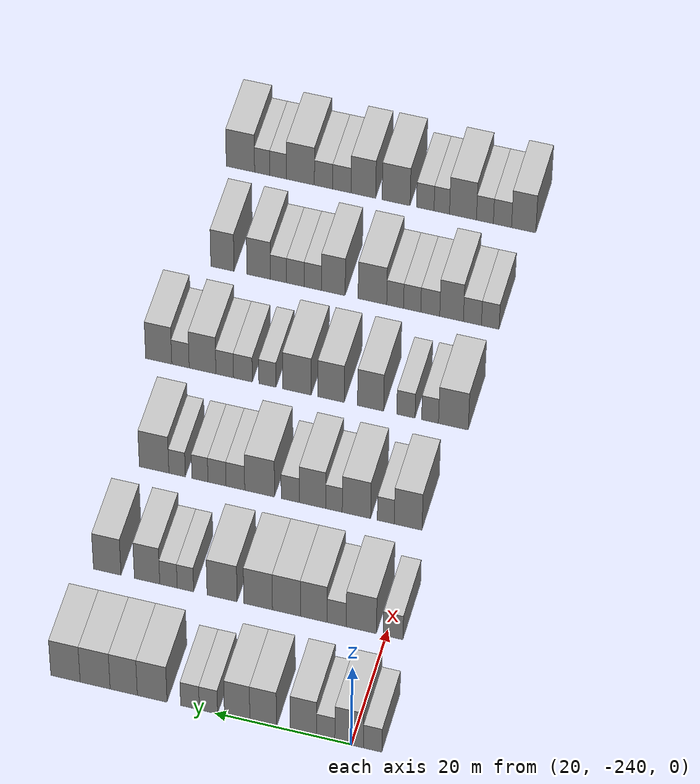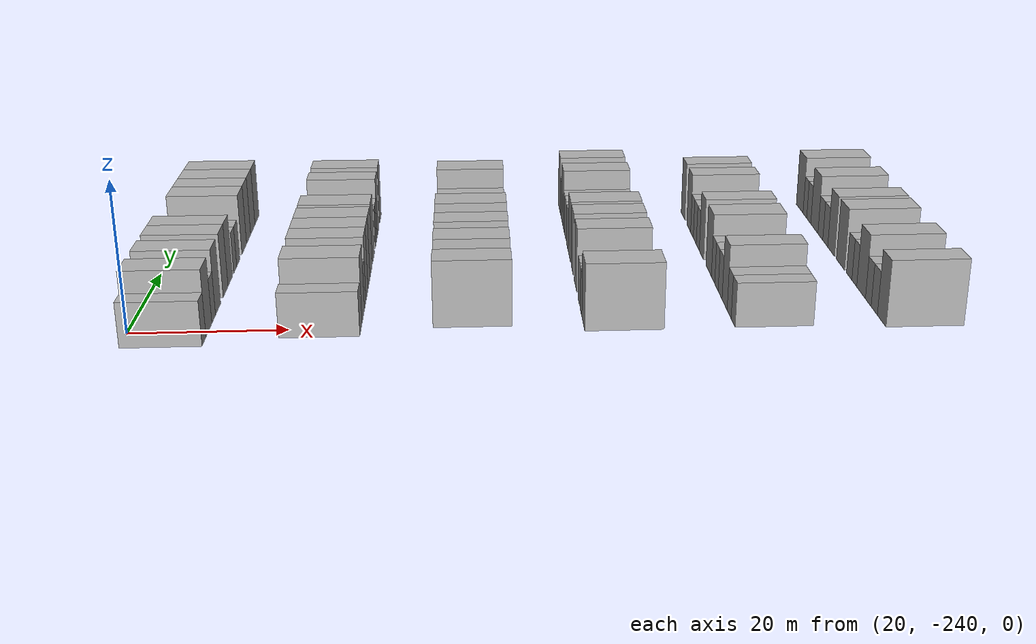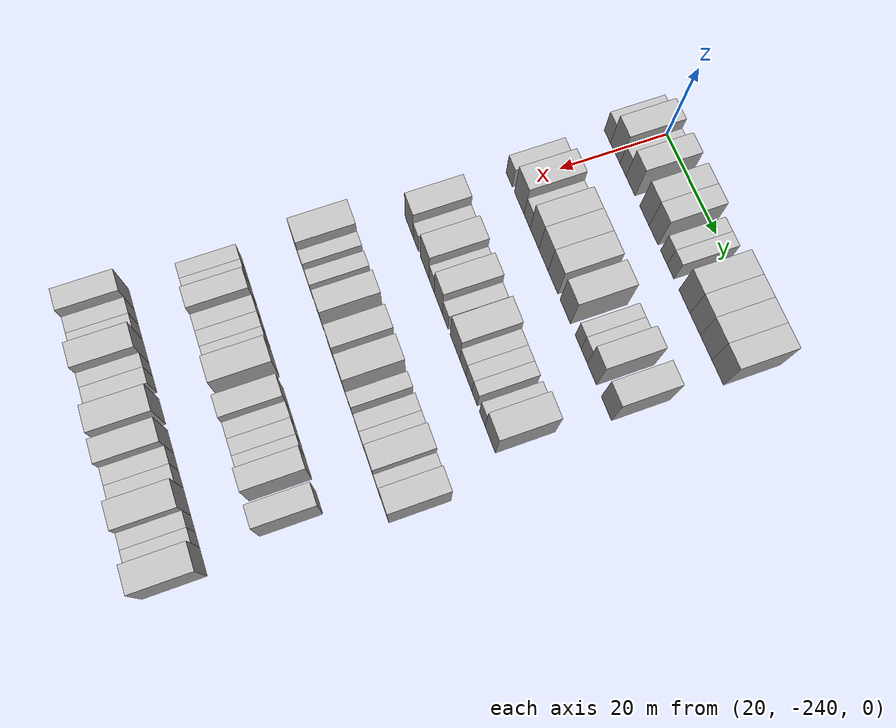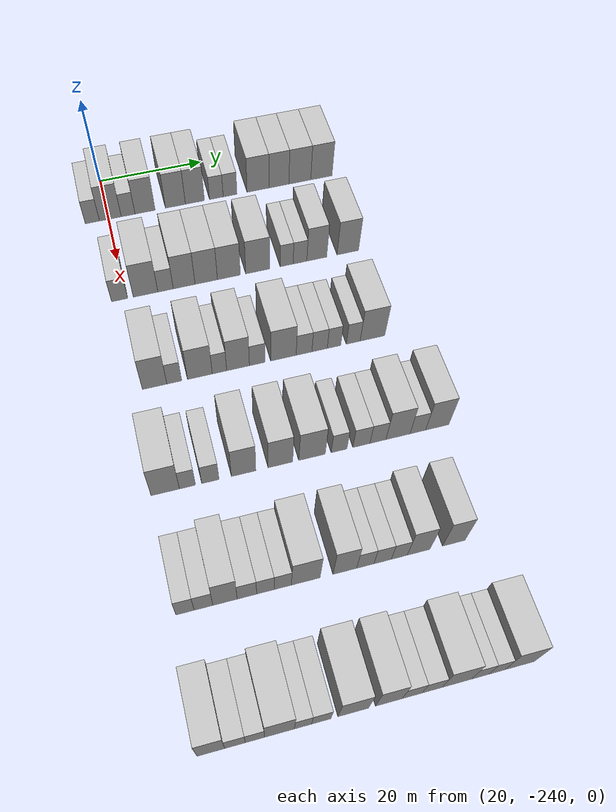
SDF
<sdf version="1.6">
 <world name="default">
  <model name="building_21">
   <static>1</static>
   <pose>25.0000 -243.0305 0 0.000000 0.000000 0.000000</pose>
   <link name="link">
    <pose>0 0 3.00 0 0 0</pose>
    <collision name="collision"><geometry><box><size>10.0000 2.6993 6.0000</size></box></geometry></collision>
    <visual name="visual">
     <cast_shadows>0</cast_shadows>
     <geometry><box><size>10.0000 2.6993 6.0000</size></box></geometry>
     <material>
      <script>
       <uri>model://HANNAS_wall/materials/scripts</uri>
       <uri>model://HANNAS_wall/materials/textures</uri>
       <name>vrc/HANNAS_wall</name>
      </script>
     </material>
    </visual>
   </link>
  </model>
  <model name="building_22">
   <static>1</static>
   <pose>25.0000 -239.6084 0 0.000000 0.000000 0.000000</pose>
   <link name="link">
    <pose>0 0 4.50 0 0 0</pose>
    <collision name="collision"><geometry><box><size>10.0000 4.1448 9.0000</size></box></geometry></collision>
    <visual name="visual">
     <cast_shadows>0</cast_shadows>
     <geometry><box><size>10.0000 4.1448 9.0000</size></box></geometry>
     <material>
      <script>
       <uri>model://HANNAS_wall/materials/scripts</uri>
       <uri>model://HANNAS_wall/materials/textures</uri>
       <name>vrc/HANNAS_wall</name>
      </script>
     </material>
    </visual>
   </link>
  </model>
  <model name="building_23">
   <static>1</static>
   <pose>25.0000 -236.2136 0 0.000000 0.000000 0.000000</pose>
   <link name="link">
    <pose>0 0 3.00 0 0 0</pose>
    <collision name="collision"><geometry><box><size>10.0000 2.6449 6.0000</size></box></geometry></collision>
    <visual name="visual">
     <cast_shadows>0</cast_shadows>
     <geometry><box><size>10.0000 2.6449 6.0000</size></box></geometry>
     <material>
      <script>
       <uri>model://HANNAS_wall/materials/scripts</uri>
       <uri>model://HANNAS_wall/materials/textures</uri>
       <name>vrc/HANNAS_wall</name>
      </script>
     </material>
    </visual>
   </link>
  </model>
  <model name="building_24">
   <static>1</static>
   <pose>25.0000 -232.9603 0 0.000000 0.000000 0.000000</pose>
   <link name="link">
    <pose>0 0 4.50 0 0 0</pose>
    <collision name="collision"><geometry><box><size>10.0000 3.8616 9.0000</size></box></geometry></collision>
    <visual name="visual">
     <cast_shadows>0</cast_shadows>
     <geometry><box><size>10.0000 3.8616 9.0000</size></box></geometry>
     <material>
      <script>
       <uri>model://HANNAS_wall/materials/scripts</uri>
       <uri>model://HANNAS_wall/materials/textures</uri>
       <name>vrc/HANNAS_wall</name>
      </script>
     </material>
    </visual>
   </link>
  </model>
  <model name="building_25">
   <static>1</static>
   <pose>25.0000 -227.0882 0 0.000000 0.000000 0.000000</pose>
   <link name="link">
    <pose>0 0 4.50 0 0 0</pose>
    <collision name="collision"><geometry><box><size>10.0000 3.8826 9.0000</size></box></geometry></collision>
    <visual name="visual">
     <cast_shadows>0</cast_shadows>
     <geometry><box><size>10.0000 3.8826 9.0000</size></box></geometry>
     <material>
      <script>
       <uri>model://HANNAS_wall/materials/scripts</uri>
       <uri>model://HANNAS_wall/materials/textures</uri>
       <name>vrc/HANNAS_wall</name>
      </script>
     </material>
    </visual>
   </link>
  </model>
  <model name="building_26">
   <static>1</static>
   <pose>25.0000 -223.2871 0 0.000000 0.000000 0.000000</pose>
   <link name="link">
    <pose>0 0 4.50 0 0 0</pose>
    <collision name="collision"><geometry><box><size>10.0000 3.7195 9.0000</size></box></geometry></collision>
    <visual name="visual">
     <cast_shadows>0</cast_shadows>
     <geometry><box><size>10.0000 3.7195 9.0000</size></box></geometry>
     <material>
      <script>
       <uri>model://HANNAS_wall/materials/scripts</uri>
       <uri>model://HANNAS_wall/materials/textures</uri>
       <name>vrc/HANNAS_wall</name>
      </script>
     </material>
    </visual>
   </link>
  </model>
  <model name="building_27">
   <static>1</static>
   <pose>25.0000 -219.0824 0 0.000000 0.000000 0.000000</pose>
   <link name="link">
    <pose>0 0 3.00 0 0 0</pose>
    <collision name="collision"><geometry><box><size>10.0000 2.6899 6.0000</size></box></geometry></collision>
    <visual name="visual">
     <cast_shadows>0</cast_shadows>
     <geometry><box><size>10.0000 2.6899 6.0000</size></box></geometry>
     <material>
      <script>
       <uri>model://HANNAS_wall/materials/scripts</uri>
       <uri>model://HANNAS_wall/materials/textures</uri>
       <name>vrc/HANNAS_wall</name>
      </script>
     </material>
    </visual>
   </link>
  </model>
  <model name="building_28">
   <static>1</static>
   <pose>25.0000 -216.3721 0 0.000000 0.000000 0.000000</pose>
   <link name="link">
    <pose>0 0 3.00 0 0 0</pose>
    <collision name="collision"><geometry><box><size>10.0000 2.7306 6.0000</size></box></geometry></collision>
    <visual name="visual">
     <cast_shadows>0</cast_shadows>
     <geometry><box><size>10.0000 2.7306 6.0000</size></box></geometry>
     <material>
      <script>
       <uri>model://HANNAS_wall/materials/scripts</uri>
       <uri>model://HANNAS_wall/materials/textures</uri>
       <name>vrc/HANNAS_wall</name>
      </script>
     </material>
    </visual>
   </link>
  </model>
  <model name="building_29">
   <static>1</static>
   <pose>25.0000 -210.8212 0 0.000000 0.000000 0.000000</pose>
   <link name="link">
    <pose>0 0 4.50 0 0 0</pose>
    <collision name="collision"><geometry><box><size>10.0000 4.3712 9.0000</size></box></geometry></collision>
    <visual name="visual">
     <cast_shadows>0</cast_shadows>
     <geometry><box><size>10.0000 4.3712 9.0000</size></box></geometry>
     <material>
      <script>
       <uri>model://HANNAS_wall/materials/scripts</uri>
       <uri>model://HANNAS_wall/materials/textures</uri>
       <name>vrc/HANNAS_wall</name>
      </script>
     </material>
    </visual>
   </link>
  </model>
  <model name="building_30">
   <static>1</static>
   <pose>25.0000 -206.6303 0 0.000000 0.000000 0.000000</pose>
   <link name="link">
    <pose>0 0 4.50 0 0 0</pose>
    <collision name="collision"><geometry><box><size>10.0000 4.0107 9.0000</size></box></geometry></collision>
    <visual name="visual">
     <cast_shadows>0</cast_shadows>
     <geometry><box><size>10.0000 4.0107 9.0000</size></box></geometry>
     <material>
      <script>
       <uri>model://HANNAS_wall/materials/scripts</uri>
       <uri>model://HANNAS_wall/materials/textures</uri>
       <name>vrc/HANNAS_wall</name>
      </script>
     </material>
    </visual>
   </link>
  </model>
  <model name="building_31">
   <static>1</static>
   <pose>25.0000 -202.4135 0 0.000000 0.000000 0.000000</pose>
   <link name="link">
    <pose>0 0 4.50 0 0 0</pose>
    <collision name="collision"><geometry><box><size>10.0000 4.4229 9.0000</size></box></geometry></collision>
    <visual name="visual">
     <cast_shadows>0</cast_shadows>
     <geometry><box><size>10.0000 4.4229 9.0000</size></box></geometry>
     <material>
      <script>
       <uri>model://HANNAS_wall/materials/scripts</uri>
       <uri>model://HANNAS_wall/materials/textures</uri>
       <name>vrc/HANNAS_wall</name>
      </script>
     </material>
    </visual>
   </link>
  </model>
  <model name="building_32">
   <static>1</static>
   <pose>25.0000 -198.0368 0 0.000000 0.000000 0.000000</pose>
   <link name="link">
    <pose>0 0 4.50 0 0 0</pose>
    <collision name="collision"><geometry><box><size>10.0000 4.3305 9.0000</size></box></geometry></collision>
    <visual name="visual">
     <cast_shadows>0</cast_shadows>
     <geometry><box><size>10.0000 4.3305 9.0000</size></box></geometry>
     <material>
      <script>
       <uri>model://HANNAS_wall/materials/scripts</uri>
       <uri>model://HANNAS_wall/materials/textures</uri>
       <name>vrc/HANNAS_wall</name>
      </script>
     </material>
    </visual>
   </link>
  </model>
  <model name="building_196">
   <static>1</static>
   <pose>44.0000 -240.9752 0 0.000000 0.000000 0.000000</pose>
   <link name="link">
    <pose>0 0 3.00 0 0 0</pose>
    <collision name="collision"><geometry><box><size>10.0000 2.9099 6.0000</size></box></geometry></collision>
    <visual name="visual">
     <cast_shadows>0</cast_shadows>
     <geometry><box><size>10.0000 2.9099 6.0000</size></box></geometry>
     <material>
      <script>
       <uri>model://HANNAS_wall/materials/scripts</uri>
       <uri>model://HANNAS_wall/materials/textures</uri>
       <name>vrc/HANNAS_wall</name>
      </script>
     </material>
    </visual>
   </link>
  </model>
  <model name="building_197">
   <static>1</static>
   <pose>44.0000 -236.2971 0 0.000000 0.000000 0.000000</pose>
   <link name="link">
    <pose>0 0 4.50 0 0 0</pose>
    <collision name="collision"><geometry><box><size>10.0000 4.4463 9.0000</size></box></geometry></collision>
    <visual name="visual">
     <cast_shadows>0</cast_shadows>
     <geometry><box><size>10.0000 4.4463 9.0000</size></box></geometry>
     <material>
      <script>
       <uri>model://HANNAS_wall/materials/scripts</uri>
       <uri>model://HANNAS_wall/materials/textures</uri>
       <name>vrc/HANNAS_wall</name>
      </script>
     </material>
    </visual>
   </link>
  </model>
  <model name="building_198">
   <static>1</static>
   <pose>44.0000 -232.6710 0 0.000000 0.000000 0.000000</pose>
   <link name="link">
    <pose>0 0 3.00 0 0 0</pose>
    <collision name="collision"><geometry><box><size>10.0000 2.8060 6.0000</size></box></geometry></collision>
    <visual name="visual">
     <cast_shadows>0</cast_shadows>
     <geometry><box><size>10.0000 2.8060 6.0000</size></box></geometry>
     <material>
      <script>
       <uri>model://HANNAS_wall/materials/scripts</uri>
       <uri>model://HANNAS_wall/materials/textures</uri>
       <name>vrc/HANNAS_wall</name>
      </script>
     </material>
    </visual>
   </link>
  </model>
  <model name="building_199">
   <static>1</static>
   <pose>44.0000 -229.2761 0 0.000000 0.000000 0.000000</pose>
   <link name="link">
    <pose>0 0 4.50 0 0 0</pose>
    <collision name="collision"><geometry><box><size>10.0000 3.9838 9.0000</size></box></geometry></collision>
    <visual name="visual">
     <cast_shadows>0</cast_shadows>
     <geometry><box><size>10.0000 3.9838 9.0000</size></box></geometry>
     <material>
      <script>
       <uri>model://HANNAS_wall/materials/scripts</uri>
       <uri>model://HANNAS_wall/materials/textures</uri>
       <name>vrc/HANNAS_wall</name>
      </script>
     </material>
    </visual>
   </link>
  </model>
  <model name="building_200">
   <static>1</static>
   <pose>44.0000 -225.2190 0 0.000000 0.000000 0.000000</pose>
   <link name="link">
    <pose>0 0 4.50 0 0 0</pose>
    <collision name="collision"><geometry><box><size>10.0000 4.1304 9.0000</size></box></geometry></collision>
    <visual name="visual">
     <cast_shadows>0</cast_shadows>
     <geometry><box><size>10.0000 4.1304 9.0000</size></box></geometry>
     <material>
      <script>
       <uri>model://HANNAS_wall/materials/scripts</uri>
       <uri>model://HANNAS_wall/materials/textures</uri>
       <name>vrc/HANNAS_wall</name>
      </script>
     </material>
    </visual>
   </link>
  </model>
  <model name="building_201">
   <static>1</static>
   <pose>44.0000 -221.0317 0 0.000000 0.000000 0.000000</pose>
   <link name="link">
    <pose>0 0 4.50 0 0 0</pose>
    <collision name="collision"><geometry><box><size>10.0000 4.2443 9.0000</size></box></geometry></collision>
    <visual name="visual">
     <cast_shadows>0</cast_shadows>
     <geometry><box><size>10.0000 4.2443 9.0000</size></box></geometry>
     <material>
      <script>
       <uri>model://HANNAS_wall/materials/scripts</uri>
       <uri>model://HANNAS_wall/materials/textures</uri>
       <name>vrc/HANNAS_wall</name>
      </script>
     </material>
    </visual>
   </link>
  </model>
  <model name="building_202">
   <static>1</static>
   <pose>44.0000 -215.6751 0 0.000000 0.000000 0.000000</pose>
   <link name="link">
    <pose>0 0 4.50 0 0 0</pose>
    <collision name="collision"><geometry><box><size>10.0000 4.4687 9.0000</size></box></geometry></collision>
    <visual name="visual">
     <cast_shadows>0</cast_shadows>
     <geometry><box><size>10.0000 4.4687 9.0000</size></box></geometry>
     <material>
      <script>
       <uri>model://HANNAS_wall/materials/scripts</uri>
       <uri>model://HANNAS_wall/materials/textures</uri>
       <name>vrc/HANNAS_wall</name>
      </script>
     </material>
    </visual>
   </link>
  </model>
  <model name="building_203">
   <static>1</static>
   <pose>44.0000 -210.2150 0 0.000000 0.000000 0.000000</pose>
   <link name="link">
    <pose>0 0 3.00 0 0 0</pose>
    <collision name="collision"><geometry><box><size>10.0000 2.4515 6.0000</size></box></geometry></collision>
    <visual name="visual">
     <cast_shadows>0</cast_shadows>
     <geometry><box><size>10.0000 2.4515 6.0000</size></box></geometry>
     <material>
      <script>
       <uri>model://HANNAS_wall/materials/scripts</uri>
       <uri>model://HANNAS_wall/materials/textures</uri>
       <name>vrc/HANNAS_wall</name>
      </script>
     </material>
    </visual>
   </link>
  </model>
  <model name="building_204">
   <static>1</static>
   <pose>44.0000 -207.6872 0 0.000000 0.000000 0.000000</pose>
   <link name="link">
    <pose>0 0 3.00 0 0 0</pose>
    <collision name="collision"><geometry><box><size>10.0000 2.6042 6.0000</size></box></geometry></collision>
    <visual name="visual">
     <cast_shadows>0</cast_shadows>
     <geometry><box><size>10.0000 2.6042 6.0000</size></box></geometry>
     <material>
      <script>
       <uri>model://HANNAS_wall/materials/scripts</uri>
       <uri>model://HANNAS_wall/materials/textures</uri>
       <name>vrc/HANNAS_wall</name>
      </script>
     </material>
    </visual>
   </link>
  </model>
  <model name="building_205">
   <static>1</static>
   <pose>44.0000 -204.4903 0 0.000000 0.000000 0.000000</pose>
   <link name="link">
    <pose>0 0 4.50 0 0 0</pose>
    <collision name="collision"><geometry><box><size>10.0000 3.7896 9.0000</size></box></geometry></collision>
    <visual name="visual">
     <cast_shadows>0</cast_shadows>
     <geometry><box><size>10.0000 3.7896 9.0000</size></box></geometry>
     <material>
      <script>
       <uri>model://HANNAS_wall/materials/scripts</uri>
       <uri>model://HANNAS_wall/materials/textures</uri>
       <name>vrc/HANNAS_wall</name>
      </script>
     </material>
    </visual>
   </link>
  </model>
  <model name="building_206">
   <static>1</static>
   <pose>44.0000 -198.5356 0 0.000000 0.000000 0.000000</pose>
   <link name="link">
    <pose>0 0 4.50 0 0 0</pose>
    <collision name="collision"><geometry><box><size>10.0000 4.1197 9.0000</size></box></geometry></collision>
    <visual name="visual">
     <cast_shadows>0</cast_shadows>
     <geometry><box><size>10.0000 4.1197 9.0000</size></box></geometry>
     <material>
      <script>
       <uri>model://HANNAS_wall/materials/scripts</uri>
       <uri>model://HANNAS_wall/materials/textures</uri>
       <name>vrc/HANNAS_wall</name>
      </script>
     </material>
    </visual>
   </link>
  </model>
  <model name="building_368">
   <static>1</static>
   <pose>63.0000 -238.2064 0 0.000000 0.000000 0.000000</pose>
   <link name="link">
    <pose>0 0 4.50 0 0 0</pose>
    <collision name="collision"><geometry><box><size>10.0000 4.1546 9.0000</size></box></geometry></collision>
    <visual name="visual">
     <cast_shadows>0</cast_shadows>
     <geometry><box><size>10.0000 4.1546 9.0000</size></box></geometry>
     <material>
      <script>
       <uri>model://HANNAS_wall/materials/scripts</uri>
       <uri>model://HANNAS_wall/materials/textures</uri>
       <name>vrc/HANNAS_wall</name>
      </script>
     </material>
    </visual>
   </link>
  </model>
  <model name="building_369">
   <static>1</static>
   <pose>63.0000 -234.8642 0 0.000000 0.000000 0.000000</pose>
   <link name="link">
    <pose>0 0 3.00 0 0 0</pose>
    <collision name="collision"><geometry><box><size>10.0000 2.5299 6.0000</size></box></geometry></collision>
    <visual name="visual">
     <cast_shadows>0</cast_shadows>
     <geometry><box><size>10.0000 2.5299 6.0000</size></box></geometry>
     <material>
      <script>
       <uri>model://HANNAS_wall/materials/scripts</uri>
       <uri>model://HANNAS_wall/materials/textures</uri>
       <name>vrc/HANNAS_wall</name>
      </script>
     </material>
    </visual>
   </link>
  </model>
  <model name="building_370">
   <static>1</static>
   <pose>63.0000 -230.4706 0 0.000000 0.000000 0.000000</pose>
   <link name="link">
    <pose>0 0 4.50 0 0 0</pose>
    <collision name="collision"><geometry><box><size>10.0000 4.2572 9.0000</size></box></geometry></collision>
    <visual name="visual">
     <cast_shadows>0</cast_shadows>
     <geometry><box><size>10.0000 4.2572 9.0000</size></box></geometry>
     <material>
      <script>
       <uri>model://HANNAS_wall/materials/scripts</uri>
       <uri>model://HANNAS_wall/materials/textures</uri>
       <name>vrc/HANNAS_wall</name>
      </script>
     </material>
    </visual>
   </link>
  </model>
  <model name="building_371">
   <static>1</static>
   <pose>63.0000 -227.0983 0 0.000000 0.000000 0.000000</pose>
   <link name="link">
    <pose>0 0 3.00 0 0 0</pose>
    <collision name="collision"><geometry><box><size>10.0000 2.4874 6.0000</size></box></geometry></collision>
    <visual name="visual">
     <cast_shadows>0</cast_shadows>
     <geometry><box><size>10.0000 2.4874 6.0000</size></box></geometry>
     <material>
      <script>
       <uri>model://HANNAS_wall/materials/scripts</uri>
       <uri>model://HANNAS_wall/materials/textures</uri>
       <name>vrc/HANNAS_wall</name>
      </script>
     </material>
    </visual>
   </link>
  </model>
  <model name="building_372">
   <static>1</static>
   <pose>63.0000 -223.8721 0 0.000000 0.000000 0.000000</pose>
   <link name="link">
    <pose>0 0 4.50 0 0 0</pose>
    <collision name="collision"><geometry><box><size>10.0000 3.9650 9.0000</size></box></geometry></collision>
    <visual name="visual">
     <cast_shadows>0</cast_shadows>
     <geometry><box><size>10.0000 3.9650 9.0000</size></box></geometry>
     <material>
      <script>
       <uri>model://HANNAS_wall/materials/scripts</uri>
       <uri>model://HANNAS_wall/materials/textures</uri>
       <name>vrc/HANNAS_wall</name>
      </script>
     </material>
    </visual>
   </link>
  </model>
  <model name="building_373">
   <static>1</static>
   <pose>63.0000 -220.5306 0 0.000000 0.000000 0.000000</pose>
   <link name="link">
    <pose>0 0 3.00 0 0 0</pose>
    <collision name="collision"><geometry><box><size>10.0000 2.7180 6.0000</size></box></geometry></collision>
    <visual name="visual">
     <cast_shadows>0</cast_shadows>
     <geometry><box><size>10.0000 2.7180 6.0000</size></box></geometry>
     <material>
      <script>
       <uri>model://HANNAS_wall/materials/scripts</uri>
       <uri>model://HANNAS_wall/materials/textures</uri>
       <name>vrc/HANNAS_wall</name>
      </script>
     </material>
    </visual>
   </link>
  </model>
  <model name="building_374">
   <static>1</static>
   <pose>63.0000 -215.9253 0 0.000000 0.000000 0.000000</pose>
   <link name="link">
    <pose>0 0 4.50 0 0 0</pose>
    <collision name="collision"><geometry><box><size>10.0000 4.4924 9.0000</size></box></geometry></collision>
    <visual name="visual">
     <cast_shadows>0</cast_shadows>
     <geometry><box><size>10.0000 4.4924 9.0000</size></box></geometry>
     <material>
      <script>
       <uri>model://HANNAS_wall/materials/scripts</uri>
       <uri>model://HANNAS_wall/materials/textures</uri>
       <name>vrc/HANNAS_wall</name>
      </script>
     </material>
    </visual>
   </link>
  </model>
  <model name="building_375">
   <static>1</static>
   <pose>63.0000 -212.2711 0 0.000000 0.000000 0.000000</pose>
   <link name="link">
    <pose>0 0 3.00 0 0 0</pose>
    <collision name="collision"><geometry><box><size>10.0000 2.8160 6.0000</size></box></geometry></collision>
    <visual name="visual">
     <cast_shadows>0</cast_shadows>
     <geometry><box><size>10.0000 2.8160 6.0000</size></box></geometry>
     <material>
      <script>
       <uri>model://HANNAS_wall/materials/scripts</uri>
       <uri>model://HANNAS_wall/materials/textures</uri>
       <name>vrc/HANNAS_wall</name>
      </script>
     </material>
    </visual>
   </link>
  </model>
  <model name="building_376">
   <static>1</static>
   <pose>63.0000 -209.4958 0 0.000000 0.000000 0.000000</pose>
   <link name="link">
    <pose>0 0 3.00 0 0 0</pose>
    <collision name="collision"><geometry><box><size>10.0000 2.7346 6.0000</size></box></geometry></collision>
    <visual name="visual">
     <cast_shadows>0</cast_shadows>
     <geometry><box><size>10.0000 2.7346 6.0000</size></box></geometry>
     <material>
      <script>
       <uri>model://HANNAS_wall/materials/scripts</uri>
       <uri>model://HANNAS_wall/materials/textures</uri>
       <name>vrc/HANNAS_wall</name>
      </script>
     </material>
    </visual>
   </link>
  </model>
  <model name="building_377">
   <static>1</static>
   <pose>63.0000 -206.9180 0 0.000000 0.000000 0.000000</pose>
   <link name="link">
    <pose>0 0 3.00 0 0 0</pose>
    <collision name="collision"><geometry><box><size>10.0000 2.4209 6.0000</size></box></geometry></collision>
    <visual name="visual">
     <cast_shadows>0</cast_shadows>
     <geometry><box><size>10.0000 2.4209 6.0000</size></box></geometry>
     <material>
      <script>
       <uri>model://HANNAS_wall/materials/scripts</uri>
       <uri>model://HANNAS_wall/materials/textures</uri>
       <name>vrc/HANNAS_wall</name>
      </script>
     </material>
    </visual>
   </link>
  </model>
  <model name="building_378">
   <static>1</static>
   <pose>63.0000 -203.4600 0 0.000000 0.000000 0.000000</pose>
   <link name="link">
    <pose>0 0 3.00 0 0 0</pose>
    <collision name="collision"><geometry><box><size>10.0000 2.4951 6.0000</size></box></geometry></collision>
    <visual name="visual">
     <cast_shadows>0</cast_shadows>
     <geometry><box><size>10.0000 2.4951 6.0000</size></box></geometry>
     <material>
      <script>
       <uri>model://HANNAS_wall/materials/scripts</uri>
       <uri>model://HANNAS_wall/materials/textures</uri>
       <name>vrc/HANNAS_wall</name>
      </script>
     </material>
    </visual>
   </link>
  </model>
  <model name="building_379">
   <static>1</static>
   <pose>63.0000 -199.9777 0 0.000000 0.000000 0.000000</pose>
   <link name="link">
    <pose>0 0 4.50 0 0 0</pose>
    <collision name="collision"><geometry><box><size>10.0000 4.4696 9.0000</size></box></geometry></collision>
    <visual name="visual">
     <cast_shadows>0</cast_shadows>
     <geometry><box><size>10.0000 4.4696 9.0000</size></box></geometry>
     <material>
      <script>
       <uri>model://HANNAS_wall/materials/scripts</uri>
       <uri>model://HANNAS_wall/materials/textures</uri>
       <name>vrc/HANNAS_wall</name>
      </script>
     </material>
    </visual>
   </link>
  </model>
  <model name="building_539">
   <static>1</static>
   <pose>82.0000 -240.0678 0 0.000000 0.000000 0.000000</pose>
   <link name="link">
    <pose>0 0 4.50 0 0 0</pose>
    <collision name="collision"><geometry><box><size>10.0000 4.4964 9.0000</size></box></geometry></collision>
    <visual name="visual">
     <cast_shadows>0</cast_shadows>
     <geometry><box><size>10.0000 4.4964 9.0000</size></box></geometry>
     <material>
      <script>
       <uri>model://HANNAS_wall/materials/scripts</uri>
       <uri>model://HANNAS_wall/materials/textures</uri>
       <name>vrc/HANNAS_wall</name>
      </script>
     </material>
    </visual>
   </link>
  </model>
  <model name="building_540">
   <static>1</static>
   <pose>82.0000 -236.5414 0 0.000000 0.000000 0.000000</pose>
   <link name="link">
    <pose>0 0 3.00 0 0 0</pose>
    <collision name="collision"><geometry><box><size>10.0000 2.5564 6.0000</size></box></geometry></collision>
    <visual name="visual">
     <cast_shadows>0</cast_shadows>
     <geometry><box><size>10.0000 2.5564 6.0000</size></box></geometry>
     <material>
      <script>
       <uri>model://HANNAS_wall/materials/scripts</uri>
       <uri>model://HANNAS_wall/materials/textures</uri>
       <name>vrc/HANNAS_wall</name>
      </script>
     </material>
    </visual>
   </link>
  </model>
  <model name="building_541">
   <static>1</static>
   <pose>82.0000 -232.8809 0 0.000000 0.000000 0.000000</pose>
   <link name="link">
    <pose>0 0 3.00 0 0 0</pose>
    <collision name="collision"><geometry><box><size>10.0000 2.7646 6.0000</size></box></geometry></collision>
    <visual name="visual">
     <cast_shadows>0</cast_shadows>
     <geometry><box><size>10.0000 2.7646 6.0000</size></box></geometry>
     <material>
      <script>
       <uri>model://HANNAS_wall/materials/scripts</uri>
       <uri>model://HANNAS_wall/materials/textures</uri>
       <name>vrc/HANNAS_wall</name>
      </script>
     </material>
    </visual>
   </link>
  </model>
  <model name="building_542">
   <static>1</static>
   <pose>82.0000 -227.5162 0 0.000000 0.000000 0.000000</pose>
   <link name="link">
    <pose>0 0 4.50 0 0 0</pose>
    <collision name="collision"><geometry><box><size>10.0000 3.9648 9.0000</size></box></geometry></collision>
    <visual name="visual">
     <cast_shadows>0</cast_shadows>
     <geometry><box><size>10.0000 3.9648 9.0000</size></box></geometry>
     <material>
      <script>
       <uri>model://HANNAS_wall/materials/scripts</uri>
       <uri>model://HANNAS_wall/materials/textures</uri>
       <name>vrc/HANNAS_wall</name>
      </script>
     </material>
    </visual>
   </link>
  </model>
  <model name="building_543">
   <static>1</static>
   <pose>82.0000 -221.5175 0 0.000000 0.000000 0.000000</pose>
   <link name="link">
    <pose>0 0 4.50 0 0 0</pose>
    <collision name="collision"><geometry><box><size>10.0000 4.0325 9.0000</size></box></geometry></collision>
    <visual name="visual">
     <cast_shadows>0</cast_shadows>
     <geometry><box><size>10.0000 4.0325 9.0000</size></box></geometry>
     <material>
      <script>
       <uri>model://HANNAS_wall/materials/scripts</uri>
       <uri>model://HANNAS_wall/materials/textures</uri>
       <name>vrc/HANNAS_wall</name>
      </script>
     </material>
    </visual>
   </link>
  </model>
  <model name="building_544">
   <static>1</static>
   <pose>82.0000 -216.3109 0 0.000000 0.000000 0.000000</pose>
   <link name="link">
    <pose>0 0 4.50 0 0 0</pose>
    <collision name="collision"><geometry><box><size>10.0000 4.3807 9.0000</size></box></geometry></collision>
    <visual name="visual">
     <cast_shadows>0</cast_shadows>
     <geometry><box><size>10.0000 4.3807 9.0000</size></box></geometry>
     <material>
      <script>
       <uri>model://HANNAS_wall/materials/scripts</uri>
       <uri>model://HANNAS_wall/materials/textures</uri>
       <name>vrc/HANNAS_wall</name>
      </script>
     </material>
    </visual>
   </link>
  </model>
  <model name="building_545">
   <static>1</static>
   <pose>82.0000 -211.8042 0 0.000000 0.000000 0.000000</pose>
   <link name="link">
    <pose>0 0 3.00 0 0 0</pose>
    <collision name="collision"><geometry><box><size>10.0000 2.6328 6.0000</size></box></geometry></collision>
    <visual name="visual">
     <cast_shadows>0</cast_shadows>
     <geometry><box><size>10.0000 2.6328 6.0000</size></box></geometry>
     <material>
      <script>
       <uri>model://HANNAS_wall/materials/scripts</uri>
       <uri>model://HANNAS_wall/materials/textures</uri>
       <name>vrc/HANNAS_wall</name>
      </script>
     </material>
    </visual>
   </link>
  </model>
  <model name="building_546">
   <static>1</static>
   <pose>82.0000 -208.0466 0 0.000000 0.000000 0.000000</pose>
   <link name="link">
    <pose>0 0 3.00 0 0 0</pose>
    <collision name="collision"><geometry><box><size>10.0000 2.8824 6.0000</size></box></geometry></collision>
    <visual name="visual">
     <cast_shadows>0</cast_shadows>
     <geometry><box><size>10.0000 2.8824 6.0000</size></box></geometry>
     <material>
      <script>
       <uri>model://HANNAS_wall/materials/scripts</uri>
       <uri>model://HANNAS_wall/materials/textures</uri>
       <name>vrc/HANNAS_wall</name>
      </script>
     </material>
    </visual>
   </link>
  </model>
  <model name="building_547">
   <static>1</static>
   <pose>82.0000 -205.2559 0 0.000000 0.000000 0.000000</pose>
   <link name="link">
    <pose>0 0 3.00 0 0 0</pose>
    <collision name="collision"><geometry><box><size>10.0000 2.6990 6.0000</size></box></geometry></collision>
    <visual name="visual">
     <cast_shadows>0</cast_shadows>
     <geometry><box><size>10.0000 2.6990 6.0000</size></box></geometry>
     <material>
      <script>
       <uri>model://HANNAS_wall/materials/scripts</uri>
       <uri>model://HANNAS_wall/materials/textures</uri>
       <name>vrc/HANNAS_wall</name>
      </script>
     </material>
    </visual>
   </link>
  </model>
  <model name="building_548">
   <static>1</static>
   <pose>82.0000 -201.8538 0 0.000000 0.000000 0.000000</pose>
   <link name="link">
    <pose>0 0 4.50 0 0 0</pose>
    <collision name="collision"><geometry><box><size>10.0000 4.1051 9.0000</size></box></geometry></collision>
    <visual name="visual">
     <cast_shadows>0</cast_shadows>
     <geometry><box><size>10.0000 4.1051 9.0000</size></box></geometry>
     <material>
      <script>
       <uri>model://HANNAS_wall/materials/scripts</uri>
       <uri>model://HANNAS_wall/materials/textures</uri>
       <name>vrc/HANNAS_wall</name>
      </script>
     </material>
    </visual>
   </link>
  </model>
  <model name="building_549">
   <static>1</static>
   <pose>82.0000 -198.4653 0 0.000000 0.000000 0.000000</pose>
   <link name="link">
    <pose>0 0 3.00 0 0 0</pose>
    <collision name="collision"><geometry><box><size>10.0000 2.6719 6.0000</size></box></geometry></collision>
    <visual name="visual">
     <cast_shadows>0</cast_shadows>
     <geometry><box><size>10.0000 2.6719 6.0000</size></box></geometry>
     <material>
      <script>
       <uri>model://HANNAS_wall/materials/scripts</uri>
       <uri>model://HANNAS_wall/materials/textures</uri>
       <name>vrc/HANNAS_wall</name>
      </script>
     </material>
    </visual>
   </link>
  </model>
  <model name="building_550">
   <static>1</static>
   <pose>82.0000 -195.1235 0 0.000000 0.000000 0.000000</pose>
   <link name="link">
    <pose>0 0 4.50 0 0 0</pose>
    <collision name="collision"><geometry><box><size>10.0000 4.0116 9.0000</size></box></geometry></collision>
    <visual name="visual">
     <cast_shadows>0</cast_shadows>
     <geometry><box><size>10.0000 4.0116 9.0000</size></box></geometry>
     <material>
      <script>
       <uri>model://HANNAS_wall/materials/scripts</uri>
       <uri>model://HANNAS_wall/materials/textures</uri>
       <name>vrc/HANNAS_wall</name>
      </script>
     </material>
    </visual>
   </link>
  </model>
  <model name="building_709">
   <static>1</static>
   <pose>101.0000 -240.8316 0 0.000000 0.000000 0.000000</pose>
   <link name="link">
    <pose>0 0 3.00 0 0 0</pose>
    <collision name="collision"><geometry><box><size>10.0000 2.7028 6.0000</size></box></geometry></collision>
    <visual name="visual">
     <cast_shadows>0</cast_shadows>
     <geometry><box><size>10.0000 2.7028 6.0000</size></box></geometry>
     <material>
      <script>
       <uri>model://HANNAS_wall/materials/scripts</uri>
       <uri>model://HANNAS_wall/materials/textures</uri>
       <name>vrc/HANNAS_wall</name>
      </script>
     </material>
    </visual>
   </link>
  </model>
  <model name="building_710">
   <static>1</static>
   <pose>101.0000 -238.0969 0 0.000000 0.000000 0.000000</pose>
   <link name="link">
    <pose>0 0 3.00 0 0 0</pose>
    <collision name="collision"><geometry><box><size>10.0000 2.7666 6.0000</size></box></geometry></collision>
    <visual name="visual">
     <cast_shadows>0</cast_shadows>
     <geometry><box><size>10.0000 2.7666 6.0000</size></box></geometry>
     <material>
      <script>
       <uri>model://HANNAS_wall/materials/scripts</uri>
       <uri>model://HANNAS_wall/materials/textures</uri>
       <name>vrc/HANNAS_wall</name>
      </script>
     </material>
    </visual>
   </link>
  </model>
  <model name="building_711">
   <static>1</static>
   <pose>101.0000 -234.8994 0 0.000000 0.000000 0.000000</pose>
   <link name="link">
    <pose>0 0 4.50 0 0 0</pose>
    <collision name="collision"><geometry><box><size>10.0000 3.6285 9.0000</size></box></geometry></collision>
    <visual name="visual">
     <cast_shadows>0</cast_shadows>
     <geometry><box><size>10.0000 3.6285 9.0000</size></box></geometry>
     <material>
      <script>
       <uri>model://HANNAS_wall/materials/scripts</uri>
       <uri>model://HANNAS_wall/materials/textures</uri>
       <name>vrc/HANNAS_wall</name>
      </script>
     </material>
    </visual>
   </link>
  </model>
  <model name="building_712">
   <static>1</static>
   <pose>101.0000 -231.6290 0 0.000000 0.000000 0.000000</pose>
   <link name="link">
    <pose>0 0 3.00 0 0 0</pose>
    <collision name="collision"><geometry><box><size>10.0000 2.9122 6.0000</size></box></geometry></collision>
    <visual name="visual">
     <cast_shadows>0</cast_shadows>
     <geometry><box><size>10.0000 2.9122 6.0000</size></box></geometry>
     <material>
      <script>
       <uri>model://HANNAS_wall/materials/scripts</uri>
       <uri>model://HANNAS_wall/materials/textures</uri>
       <name>vrc/HANNAS_wall</name>
      </script>
     </material>
    </visual>
   </link>
  </model>
  <model name="building_713">
   <static>1</static>
   <pose>101.0000 -228.8510 0 0.000000 0.000000 0.000000</pose>
   <link name="link">
    <pose>0 0 3.00 0 0 0</pose>
    <collision name="collision"><geometry><box><size>10.0000 2.6437 6.0000</size></box></geometry></collision>
    <visual name="visual">
     <cast_shadows>0</cast_shadows>
     <geometry><box><size>10.0000 2.6437 6.0000</size></box></geometry>
     <material>
      <script>
       <uri>model://HANNAS_wall/materials/scripts</uri>
       <uri>model://HANNAS_wall/materials/textures</uri>
       <name>vrc/HANNAS_wall</name>
      </script>
     </material>
    </visual>
   </link>
  </model>
  <model name="building_714">
   <static>1</static>
   <pose>101.0000 -226.2298 0 0.000000 0.000000 0.000000</pose>
   <link name="link">
    <pose>0 0 3.00 0 0 0</pose>
    <collision name="collision"><geometry><box><size>10.0000 2.5987 6.0000</size></box></geometry></collision>
    <visual name="visual">
     <cast_shadows>0</cast_shadows>
     <geometry><box><size>10.0000 2.5987 6.0000</size></box></geometry>
     <material>
      <script>
       <uri>model://HANNAS_wall/materials/scripts</uri>
       <uri>model://HANNAS_wall/materials/textures</uri>
       <name>vrc/HANNAS_wall</name>
      </script>
     </material>
    </visual>
   </link>
  </model>
  <model name="building_715">
   <static>1</static>
   <pose>101.0000 -222.7291 0 0.000000 0.000000 0.000000</pose>
   <link name="link">
    <pose>0 0 4.50 0 0 0</pose>
    <collision name="collision"><geometry><box><size>10.0000 4.4026 9.0000</size></box></geometry></collision>
    <visual name="visual">
     <cast_shadows>0</cast_shadows>
     <geometry><box><size>10.0000 4.4026 9.0000</size></box></geometry>
     <material>
      <script>
       <uri>model://HANNAS_wall/materials/scripts</uri>
       <uri>model://HANNAS_wall/materials/textures</uri>
       <name>vrc/HANNAS_wall</name>
      </script>
     </material>
    </visual>
   </link>
  </model>
  <model name="building_716">
   <static>1</static>
   <pose>101.0000 -216.6963 0 0.000000 0.000000 0.000000</pose>
   <link name="link">
    <pose>0 0 4.50 0 0 0</pose>
    <collision name="collision"><geometry><box><size>10.0000 3.6631 9.0000</size></box></geometry></collision>
    <visual name="visual">
     <cast_shadows>0</cast_shadows>
     <geometry><box><size>10.0000 3.6631 9.0000</size></box></geometry>
     <material>
      <script>
       <uri>model://HANNAS_wall/materials/scripts</uri>
       <uri>model://HANNAS_wall/materials/textures</uri>
       <name>vrc/HANNAS_wall</name>
      </script>
     </material>
    </visual>
   </link>
  </model>
  <model name="building_717">
   <static>1</static>
   <pose>101.0000 -213.5186 0 0.000000 0.000000 0.000000</pose>
   <link name="link">
    <pose>0 0 3.00 0 0 0</pose>
    <collision name="collision"><geometry><box><size>10.0000 2.6922 6.0000</size></box></geometry></collision>
    <visual name="visual">
     <cast_shadows>0</cast_shadows>
     <geometry><box><size>10.0000 2.6922 6.0000</size></box></geometry>
     <material>
      <script>
       <uri>model://HANNAS_wall/materials/scripts</uri>
       <uri>model://HANNAS_wall/materials/textures</uri>
       <name>vrc/HANNAS_wall</name>
      </script>
     </material>
    </visual>
   </link>
  </model>
  <model name="building_718">
   <static>1</static>
   <pose>101.0000 -210.8154 0 0.000000 0.000000 0.000000</pose>
   <link name="link">
    <pose>0 0 3.00 0 0 0</pose>
    <collision name="collision"><geometry><box><size>10.0000 2.7141 6.0000</size></box></geometry></collision>
    <visual name="visual">
     <cast_shadows>0</cast_shadows>
     <geometry><box><size>10.0000 2.7141 6.0000</size></box></geometry>
     <material>
      <script>
       <uri>model://HANNAS_wall/materials/scripts</uri>
       <uri>model://HANNAS_wall/materials/textures</uri>
       <name>vrc/HANNAS_wall</name>
      </script>
     </material>
    </visual>
   </link>
  </model>
  <model name="building_719">
   <static>1</static>
   <pose>101.0000 -208.1989 0 0.000000 0.000000 0.000000</pose>
   <link name="link">
    <pose>0 0 3.00 0 0 0</pose>
    <collision name="collision"><geometry><box><size>10.0000 2.5190 6.0000</size></box></geometry></collision>
    <visual name="visual">
     <cast_shadows>0</cast_shadows>
     <geometry><box><size>10.0000 2.5190 6.0000</size></box></geometry>
     <material>
      <script>
       <uri>model://HANNAS_wall/materials/scripts</uri>
       <uri>model://HANNAS_wall/materials/textures</uri>
       <name>vrc/HANNAS_wall</name>
      </script>
     </material>
    </visual>
   </link>
  </model>
  <model name="building_720">
   <static>1</static>
   <pose>101.0000 -205.1234 0 0.000000 0.000000 0.000000</pose>
   <link name="link">
    <pose>0 0 4.50 0 0 0</pose>
    <collision name="collision"><geometry><box><size>10.0000 3.6321 9.0000</size></box></geometry></collision>
    <visual name="visual">
     <cast_shadows>0</cast_shadows>
     <geometry><box><size>10.0000 3.6321 9.0000</size></box></geometry>
     <material>
      <script>
       <uri>model://HANNAS_wall/materials/scripts</uri>
       <uri>model://HANNAS_wall/materials/textures</uri>
       <name>vrc/HANNAS_wall</name>
      </script>
     </material>
    </visual>
   </link>
  </model>
  <model name="building_721">
   <static>1</static>
   <pose>101.0000 -199.5034 0 0.000000 0.000000 0.000000</pose>
   <link name="link">
    <pose>0 0 4.50 0 0 0</pose>
    <collision name="collision"><geometry><box><size>10.0000 3.6078 9.0000</size></box></geometry></collision>
    <visual name="visual">
     <cast_shadows>0</cast_shadows>
     <geometry><box><size>10.0000 3.6078 9.0000</size></box></geometry>
     <material>
      <script>
       <uri>model://HANNAS_wall/materials/scripts</uri>
       <uri>model://HANNAS_wall/materials/textures</uri>
       <name>vrc/HANNAS_wall</name>
      </script>
     </material>
    </visual>
   </link>
  </model>
  <model name="building_892">
   <static>1</static>
   <pose>120.0000 -241.2164 0 0.000000 0.000000 0.000000</pose>
   <link name="link">
    <pose>0 0 4.50 0 0 0</pose>
    <collision name="collision"><geometry><box><size>10.0000 3.7619 9.0000</size></box></geometry></collision>
    <visual name="visual">
     <cast_shadows>0</cast_shadows>
     <geometry><box><size>10.0000 3.7619 9.0000</size></box></geometry>
     <material>
      <script>
       <uri>model://HANNAS_wall/materials/scripts</uri>
       <uri>model://HANNAS_wall/materials/textures</uri>
       <name>vrc/HANNAS_wall</name>
      </script>
     </material>
    </visual>
   </link>
  </model>
  <model name="building_893">
   <static>1</static>
   <pose>120.0000 -237.9243 0 0.000000 0.000000 0.000000</pose>
   <link name="link">
    <pose>0 0 3.00 0 0 0</pose>
    <collision name="collision"><geometry><box><size>10.0000 2.8224 6.0000</size></box></geometry></collision>
    <visual name="visual">
     <cast_shadows>0</cast_shadows>
     <geometry><box><size>10.0000 2.8224 6.0000</size></box></geometry>
     <material>
      <script>
       <uri>model://HANNAS_wall/materials/scripts</uri>
       <uri>model://HANNAS_wall/materials/textures</uri>
       <name>vrc/HANNAS_wall</name>
      </script>
     </material>
    </visual>
   </link>
  </model>
  <model name="building_894">
   <static>1</static>
   <pose>120.0000 -235.1986 0 0.000000 0.000000 0.000000</pose>
   <link name="link">
    <pose>0 0 3.00 0 0 0</pose>
    <collision name="collision"><geometry><box><size>10.0000 2.6289 6.0000</size></box></geometry></collision>
    <visual name="visual">
     <cast_shadows>0</cast_shadows>
     <geometry><box><size>10.0000 2.6289 6.0000</size></box></geometry>
     <material>
      <script>
       <uri>model://HANNAS_wall/materials/scripts</uri>
       <uri>model://HANNAS_wall/materials/textures</uri>
       <name>vrc/HANNAS_wall</name>
      </script>
     </material>
    </visual>
   </link>
  </model>
  <model name="building_895">
   <static>1</static>
   <pose>120.0000 -231.7882 0 0.000000 0.000000 0.000000</pose>
   <link name="link">
    <pose>0 0 4.50 0 0 0</pose>
    <collision name="collision"><geometry><box><size>10.0000 4.1919 9.0000</size></box></geometry></collision>
    <visual name="visual">
     <cast_shadows>0</cast_shadows>
     <geometry><box><size>10.0000 4.1919 9.0000</size></box></geometry>
     <material>
      <script>
       <uri>model://HANNAS_wall/materials/scripts</uri>
       <uri>model://HANNAS_wall/materials/textures</uri>
       <name>vrc/HANNAS_wall</name>
      </script>
     </material>
    </visual>
   </link>
  </model>
  <model name="building_896">
   <static>1</static>
   <pose>120.0000 -228.4877 0 0.000000 0.000000 0.000000</pose>
   <link name="link">
    <pose>0 0 3.00 0 0 0</pose>
    <collision name="collision"><geometry><box><size>10.0000 2.4092 6.0000</size></box></geometry></collision>
    <visual name="visual">
     <cast_shadows>0</cast_shadows>
     <geometry><box><size>10.0000 2.4092 6.0000</size></box></geometry>
     <material>
      <script>
       <uri>model://HANNAS_wall/materials/scripts</uri>
       <uri>model://HANNAS_wall/materials/textures</uri>
       <name>vrc/HANNAS_wall</name>
      </script>
     </material>
    </visual>
   </link>
  </model>
  <model name="building_897">
   <static>1</static>
   <pose>120.0000 -225.9157 0 0.000000 0.000000 0.000000</pose>
   <link name="link">
    <pose>0 0 3.00 0 0 0</pose>
    <collision name="collision"><geometry><box><size>10.0000 2.7347 6.0000</size></box></geometry></collision>
    <visual name="visual">
     <cast_shadows>0</cast_shadows>
     <geometry><box><size>10.0000 2.7347 6.0000</size></box></geometry>
     <material>
      <script>
       <uri>model://HANNAS_wall/materials/scripts</uri>
       <uri>model://HANNAS_wall/materials/textures</uri>
       <name>vrc/HANNAS_wall</name>
      </script>
     </material>
    </visual>
   </link>
  </model>
  <model name="building_898">
   <static>1</static>
   <pose>120.0000 -221.3637 0 0.000000 0.000000 0.000000</pose>
   <link name="link">
    <pose>0 0 4.50 0 0 0</pose>
    <collision name="collision"><geometry><box><size>10.0000 4.3694 9.0000</size></box></geometry></collision>
    <visual name="visual">
     <cast_shadows>0</cast_shadows>
     <geometry><box><size>10.0000 4.3694 9.0000</size></box></geometry>
     <material>
      <script>
       <uri>model://HANNAS_wall/materials/scripts</uri>
       <uri>model://HANNAS_wall/materials/textures</uri>
       <name>vrc/HANNAS_wall</name>
      </script>
     </material>
    </visual>
   </link>
  </model>
  <model name="building_899">
   <static>1</static>
   <pose>120.0000 -216.2471 0 0.000000 0.000000 0.000000</pose>
   <link name="link">
    <pose>0 0 4.50 0 0 0</pose>
    <collision name="collision"><geometry><box><size>10.0000 3.8638 9.0000</size></box></geometry></collision>
    <visual name="visual">
     <cast_shadows>0</cast_shadows>
     <geometry><box><size>10.0000 3.8638 9.0000</size></box></geometry>
     <material>
      <script>
       <uri>model://HANNAS_wall/materials/scripts</uri>
       <uri>model://HANNAS_wall/materials/textures</uri>
       <name>vrc/HANNAS_wall</name>
      </script>
     </material>
    </visual>
   </link>
  </model>
  <model name="building_900">
   <static>1</static>
   <pose>120.0000 -212.8799 0 0.000000 0.000000 0.000000</pose>
   <link name="link">
    <pose>0 0 3.00 0 0 0</pose>
    <collision name="collision"><geometry><box><size>10.0000 2.8707 6.0000</size></box></geometry></collision>
    <visual name="visual">
     <cast_shadows>0</cast_shadows>
     <geometry><box><size>10.0000 2.8707 6.0000</size></box></geometry>
     <material>
      <script>
       <uri>model://HANNAS_wall/materials/scripts</uri>
       <uri>model://HANNAS_wall/materials/textures</uri>
       <name>vrc/HANNAS_wall</name>
      </script>
     </material>
    </visual>
   </link>
  </model>
  <model name="building_901">
   <static>1</static>
   <pose>120.0000 -210.0092 0 0.000000 0.000000 0.000000</pose>
   <link name="link">
    <pose>0 0 3.00 0 0 0</pose>
    <collision name="collision"><geometry><box><size>10.0000 2.8707 6.0000</size></box></geometry></collision>
    <visual name="visual">
     <cast_shadows>0</cast_shadows>
     <geometry><box><size>10.0000 2.8707 6.0000</size></box></geometry>
     <material>
      <script>
       <uri>model://HANNAS_wall/materials/scripts</uri>
       <uri>model://HANNAS_wall/materials/textures</uri>
       <name>vrc/HANNAS_wall</name>
      </script>
     </material>
    </visual>
   </link>
  </model>
  <model name="building_902">
   <static>1</static>
   <pose>120.0000 -206.3633 0 0.000000 0.000000 0.000000</pose>
   <link name="link">
    <pose>0 0 4.50 0 0 0</pose>
    <collision name="collision"><geometry><box><size>10.0000 4.4210 9.0000</size></box></geometry></collision>
    <visual name="visual">
     <cast_shadows>0</cast_shadows>
     <geometry><box><size>10.0000 4.4210 9.0000</size></box></geometry>
     <material>
      <script>
       <uri>model://HANNAS_wall/materials/scripts</uri>
       <uri>model://HANNAS_wall/materials/textures</uri>
       <name>vrc/HANNAS_wall</name>
      </script>
     </material>
    </visual>
   </link>
  </model>
  <model name="building_903">
   <static>1</static>
   <pose>120.0000 -202.8593 0 0.000000 0.000000 0.000000</pose>
   <link name="link">
    <pose>0 0 3.00 0 0 0</pose>
    <collision name="collision"><geometry><box><size>10.0000 2.5871 6.0000</size></box></geometry></collision>
    <visual name="visual">
     <cast_shadows>0</cast_shadows>
     <geometry><box><size>10.0000 2.5871 6.0000</size></box></geometry>
     <material>
      <script>
       <uri>model://HANNAS_wall/materials/scripts</uri>
       <uri>model://HANNAS_wall/materials/textures</uri>
       <name>vrc/HANNAS_wall</name>
      </script>
     </material>
    </visual>
   </link>
  </model>
  <model name="building_904">
   <static>1</static>
   <pose>120.0000 -200.3644 0 0.000000 0.000000 0.000000</pose>
   <link name="link">
    <pose>0 0 3.00 0 0 0</pose>
    <collision name="collision"><geometry><box><size>10.0000 2.4026 6.0000</size></box></geometry></collision>
    <visual name="visual">
     <cast_shadows>0</cast_shadows>
     <geometry><box><size>10.0000 2.4026 6.0000</size></box></geometry>
     <material>
      <script>
       <uri>model://HANNAS_wall/materials/scripts</uri>
       <uri>model://HANNAS_wall/materials/textures</uri>
       <name>vrc/HANNAS_wall</name>
      </script>
     </material>
    </visual>
   </link>
  </model>
  <model name="building_905">
   <static>1</static>
   <pose>120.0000 -196.9337 0 0.000000 0.000000 0.000000</pose>
   <link name="link">
    <pose>0 0 4.50 0 0 0</pose>
    <collision name="collision"><geometry><box><size>10.0000 4.4587 9.0000</size></box></geometry></collision>
    <visual name="visual">
     <cast_shadows>0</cast_shadows>
     <geometry><box><size>10.0000 4.4587 9.0000</size></box></geometry>
     <material>
      <script>
       <uri>model://HANNAS_wall/materials/scripts</uri>
       <uri>model://HANNAS_wall/materials/textures</uri>
       <name>vrc/HANNAS_wall</name>
      </script>
     </material>
    </visual>
   </link>
  </model>
 </world>
</sdf>
